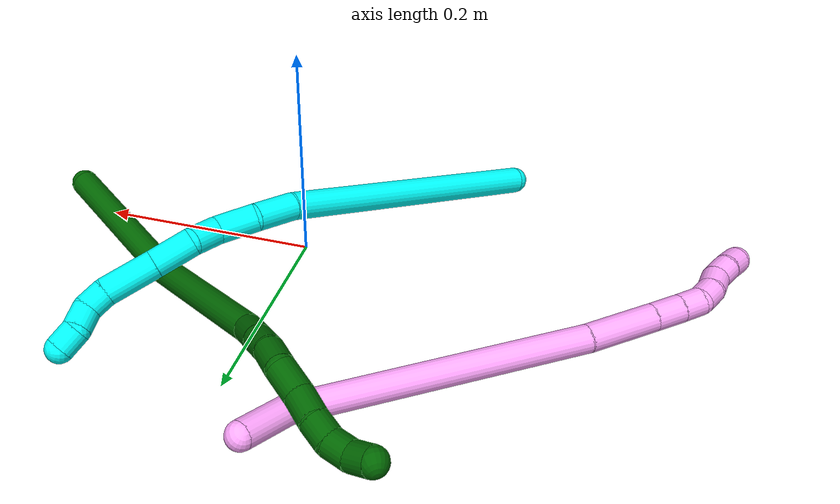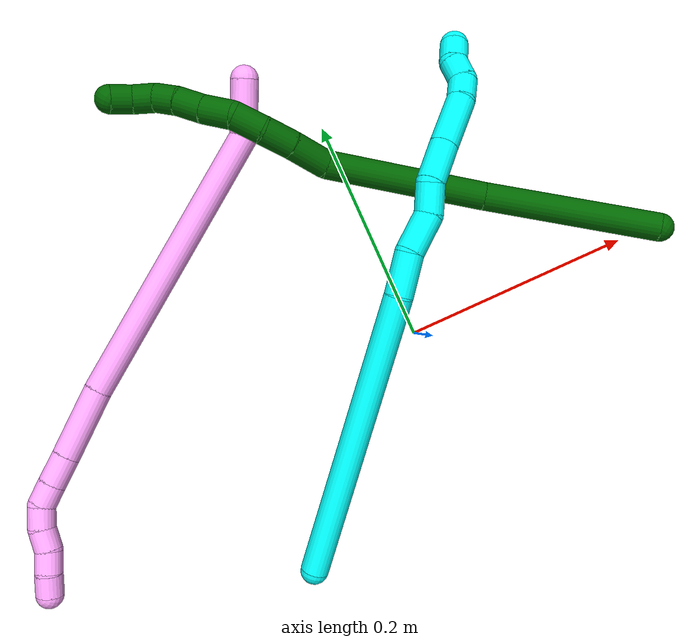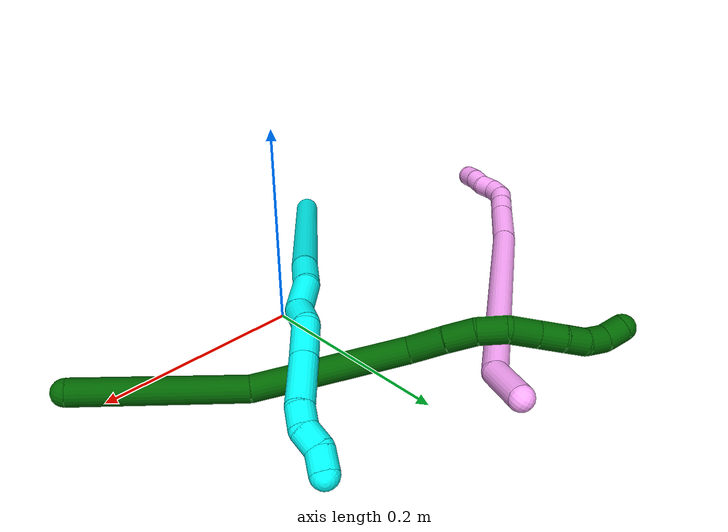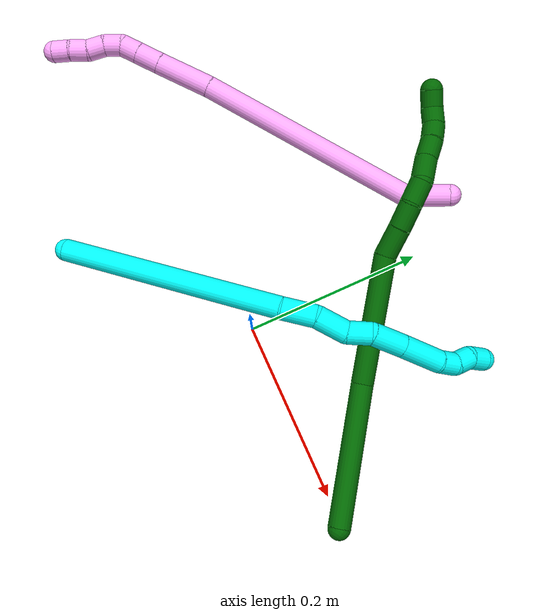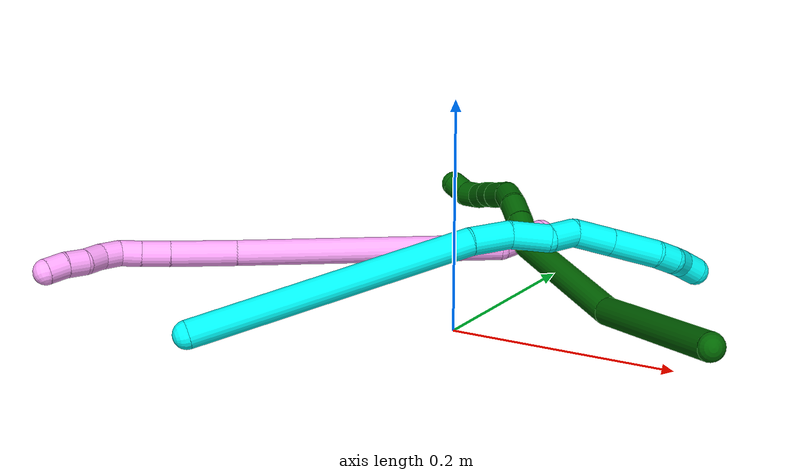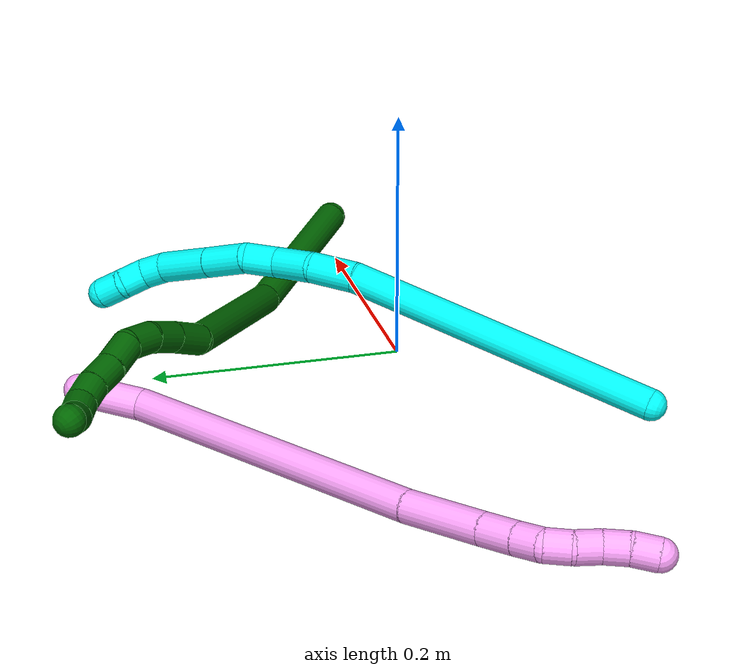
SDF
<sdf version="1.7">
 <world name="default">
  <model name="photoneo_s_sensor">
   <static>1</static>
   <pose>0 0 2 1.57079 1.57079 3.14159</pose>
   <link name="link">
    <inertial><mass>0.1</mass></inertial>
    <sensor name="sensor" type="depth">
     <update_rate>30</update_rate>
     <camera>
      <horizontal_fov>1.22</horizontal_fov>
      <image><width>1920</width><height>1200</height><format>B8G8R8</format></image>
      <clip><near>0.1</near><far>4</far></clip>
      <depth_camera><output>points</output></depth_camera>
     </camera>
     <plugin name="camera_plugin" filename="libgazebo_ros_depth_camera.so">
      <baseline>0.2</baseline>
      <alwaysOn>1</alwaysOn>
      <updateRate>0.0</updateRate>
      <cameraName>camera_ir</cameraName>
      <imageTopicName>/camera/color/image_raw</imageTopicName>
      <cameraInfoTopicName>/camera/color/camera_info</cameraInfoTopicName>
      <depthImageTopicName>/camera/depth/image_raw</depthImageTopicName>
      <depthImageCameraInfoTopicName>/camera/depth/camera_info</depthImageCameraInfoTopicName>
      <pointCloudTopicName>/camera/depth/points</pointCloudTopicName>
      <frameName>fr_optical</frameName>
      <pointCloudCutoff>0.1</pointCloudCutoff>
      <pointCloudCutoffMax>2.0</pointCloudCutoffMax>
      <distortionK1>0</distortionK1>
      <distortionK2>0</distortionK2>
      <distortionK3>0</distortionK3>
      <distortionT1>0</distortionT1>
      <distortionT2>0</distortionT2>
      <CxPrime>0</CxPrime>
      <Cx>0</Cx>
      <Cy>0</Cy>
      <focalLength>0</focalLength>
      <hackBaseline>0</hackBaseline>
     </plugin>
    </sensor>
   </link>
  </model>
  <model name="bin">
   <static>1</static>
   <link name="bottom">
    <collision name="collision-bottom">
     <pose>0 0 -0.01 0 -0 0</pose>
     <geometry><box><size>0.8 0.6 0.02</size></box></geometry>
     <surface>
      <friction><ode><mu>100</mu><mu2>100</mu2></ode></friction>
      <contact><collide_bitmask>65535</collide_bitmask></contact>
     </surface>
    </collision>
   </link>
   <link name="west_wall">
    <collision name="collision-west_wall">
     <pose>-0.41 0 0.1 0 -0 0</pose>
     <geometry><box><size>0.02 0.6 0.2</size></box></geometry>
     <surface>
      <friction><ode><mu>100</mu><mu2>100</mu2></ode></friction>
      <contact><collide_bitmask>65535</collide_bitmask></contact>
     </surface>
    </collision>
   </link>
   <link name="east_wall">
    <collision name="collision-east_wall">
     <pose>0.41 0 0.1 0 -0 0</pose>
     <geometry><box><size>0.02 0.6 0.2</size></box></geometry>
     <surface>
      <friction><ode><mu>100</mu><mu2>100</mu2></ode></friction>
      <contact><collide_bitmask>65535</collide_bitmask></contact>
     </surface>
    </collision>
   </link>
   <link name="south_wall">
    <collision name="collision-south_wall">
     <pose>0 -0.31 0.1 0 -0 0</pose>
     <geometry><box><size>0.8 0.02 0.2</size></box></geometry>
     <surface>
      <friction><ode><mu>100</mu><mu2>100</mu2></ode></friction>
      <contact><collide_bitmask>65535</collide_bitmask></contact>
     </surface>
    </collision>
   </link>
   <link name="north_wall">
    <collision name="collision-north_wall">
     <pose>0 0.31 0.1 0 -0 0</pose>
     <geometry><box><size>0.8 0.02 0.2</size></box></geometry>
     <surface>
      <friction><ode><mu>100</mu><mu2>100</mu2></ode></friction>
      <contact><collide_bitmask>65535</collide_bitmask></contact>
     </surface>
    </collision>
   </link>
  </model>
  <model name="3">
   <static>0</static>
   <link name="3">
    <collision name="collision-cylinder-e_1_1_4">
     <pose>-0.000203 0.000655 0.128577 -0.005098 -0.001576 4e-06</pose>
     <geometry><cylinder><radius>0.0125</radius><length>0.257159</length></cylinder></geometry>
     <surface>
      <friction><ode><mu>1.16</mu><mu2>1.16</mu2><slip1>0</slip1><slip2>0</slip2></ode></friction>
      <contact><ode><kp>1e+06</kp><kd>1</kd><max_vel>0</max_vel><min_depth>0.001</min_depth></ode></contact>
     </surface>
    </collision>
    <visual name="visual-cylinder-e_1_1_4">
     <pose>-0.000203 0.000655 0.128577 -0.005098 -0.001576 4e-06</pose>
     <geometry><cylinder><radius>0.0125</radius><length>0.257159</length></cylinder></geometry>
     <material><ambient>0.003922 1 0.996078 1</ambient></material>
    </visual>
    <collision name="collision-cylinder-e_2_4_5">
     <pose>-0.002354 0.003815 0.275465 -0.135912 -0.105045 0.007156</pose>
     <geometry><cylinder><radius>0.0125</radius><length>0.037166</length></cylinder></geometry>
     <surface>
      <friction><ode><mu>1.16</mu><mu2>1.16</mu2><slip1>0</slip1><slip2>0</slip2></ode></friction>
      <contact><ode><kp>1e+06</kp><kd>1</kd><max_vel>0</max_vel><min_depth>0.001</min_depth></ode></contact>
     </surface>
    </collision>
    <visual name="visual-cylinder-e_2_4_5">
     <pose>-0.002354 0.003815 0.275465 -0.135912 -0.105045 0.007156</pose>
     <geometry><cylinder><radius>0.0125</radius><length>0.037166</length></cylinder></geometry>
     <material><ambient>0.003922 1 0.996078 1</ambient></material>
    </visual>
    <collision name="collision-cylinder-e_3_5_6">
     <pose>-0.003591 0.013414 0.310112 -0.409704 0.039905 -0.008292</pose>
     <geometry><cylinder><radius>0.0125</radius><length>0.035651</length></cylinder></geometry>
     <surface>
      <friction><ode><mu>1.16</mu><mu2>1.16</mu2><slip1>0</slip1><slip2>0</slip2></ode></friction>
      <contact><ode><kp>1e+06</kp><kd>1</kd><max_vel>0</max_vel><min_depth>0.001</min_depth></ode></contact>
     </surface>
    </collision>
    <visual name="visual-cylinder-e_3_5_6">
     <pose>-0.003591 0.013414 0.310112 -0.409704 0.039905 -0.008292</pose>
     <geometry><cylinder><radius>0.0125</radius><length>0.035651</length></cylinder></geometry>
     <material><ambient>0.003922 1 0.996078 1</ambient></material>
    </visual>
    <collision name="collision-cylinder-e_4_6_7">
     <pose>-0.006583 0.021422 0.339153 -0.071724 -0.282992 0.010221</pose>
     <geometry><cylinder><radius>0.0125</radius><length>0.026527</length></cylinder></geometry>
     <surface>
      <friction><ode><mu>1.16</mu><mu2>1.16</mu2><slip1>0</slip1><slip2>0</slip2></ode></friction>
      <contact><ode><kp>1e+06</kp><kd>1</kd><max_vel>0</max_vel><min_depth>0.001</min_depth></ode></contact>
     </surface>
    </collision>
    <visual name="visual-cylinder-e_4_6_7">
     <pose>-0.006583 0.021422 0.339153 -0.071724 -0.282992 0.010221</pose>
     <geometry><cylinder><radius>0.0125</radius><length>0.026527</length></cylinder></geometry>
     <material><ambient>0.003922 1 0.996078 1</ambient></material>
    </visual>
    <collision name="collision-cylinder-e_5_7_8">
     <pose>-0.012816 0.031401 0.367461 -0.526346 -0.13924 0.037571</pose>
     <geometry><cylinder><radius>0.0125</radius><length>0.036448</length></cylinder></geometry>
     <surface>
      <friction><ode><mu>1.16</mu><mu2>1.16</mu2><slip1>0</slip1><slip2>0</slip2></ode></friction>
      <contact><ode><kp>1e+06</kp><kd>1</kd><max_vel>0</max_vel><min_depth>0.001</min_depth></ode></contact>
     </surface>
    </collision>
    <visual name="visual-cylinder-e_5_7_8">
     <pose>-0.012816 0.031401 0.367461 -0.526346 -0.13924 0.037571</pose>
     <geometry><cylinder><radius>0.0125</radius><length>0.036448</length></cylinder></geometry>
     <material><ambient>0.003922 1 0.996078 1</ambient></material>
    </visual>
    <collision name="collision-cylinder-e_6_8_9">
     <pose>-0.018099 0.052151 0.402876 -0.532863 -0.119163 0.032558</pose>
     <geometry><cylinder><radius>0.0125</radius><length>0.046326</length></cylinder></geometry>
     <surface>
      <friction><ode><mu>1.16</mu><mu2>1.16</mu2><slip1>0</slip1><slip2>0</slip2></ode></friction>
      <contact><ode><kp>1e+06</kp><kd>1</kd><max_vel>0</max_vel><min_depth>0.001</min_depth></ode></contact>
     </surface>
    </collision>
    <visual name="visual-cylinder-e_6_8_9">
     <pose>-0.018099 0.052151 0.402876 -0.532863 -0.119163 0.032558</pose>
     <geometry><cylinder><radius>0.0125</radius><length>0.046326</length></cylinder></geometry>
     <material><ambient>0.003922 1 0.996078 1</ambient></material>
    </visual>
    <collision name="collision-cylinder-e_7_9_10">
     <pose>-0.024368 0.068853 0.430592 -0.565568 -0.359056 0.105369</pose>
     <geometry><cylinder><radius>0.0125</radius><length>0.020004</length></cylinder></geometry>
     <surface>
      <friction><ode><mu>1.16</mu><mu2>1.16</mu2><slip1>0</slip1><slip2>0</slip2></ode></friction>
      <contact><ode><kp>1e+06</kp><kd>1</kd><max_vel>0</max_vel><min_depth>0.001</min_depth></ode></contact>
     </surface>
    </collision>
    <visual name="visual-cylinder-e_7_9_10">
     <pose>-0.024368 0.068853 0.430592 -0.565568 -0.359056 0.105369</pose>
     <geometry><cylinder><radius>0.0125</radius><length>0.020004</length></cylinder></geometry>
     <material><ambient>0.003922 1 0.996078 1</ambient></material>
    </visual>
    <collision name="collision-cylinder-e_8_10_11">
     <pose>-0.035477 0.07663 0.44474 -0.41619 -0.838821 0.187737</pose>
     <geometry><cylinder><radius>0.0125</radius><length>0.020421</length></cylinder></geometry>
     <surface>
      <friction><ode><mu>1.16</mu><mu2>1.16</mu2><slip1>0</slip1><slip2>0</slip2></ode></friction>
      <contact><ode><kp>1e+06</kp><kd>1</kd><max_vel>0</max_vel><min_depth>0.001</min_depth></ode></contact>
     </surface>
    </collision>
    <visual name="visual-cylinder-e_8_10_11">
     <pose>-0.035477 0.07663 0.44474 -0.41619 -0.838821 0.187737</pose>
     <geometry><cylinder><radius>0.0125</radius><length>0.020421</length></cylinder></geometry>
     <material><ambient>0.003922 1 0.996078 1</ambient></material>
    </visual>
    <collision name="collision-cylinder-e_9_11_2">
     <pose>-0.047243 0.085187 0.458192 -0.677226 -0.423421 0.1511</pose>
     <geometry><cylinder><radius>0.0125</radius><length>0.020298</length></cylinder></geometry>
     <surface>
      <friction><ode><mu>1.16</mu><mu2>1.16</mu2><slip1>0</slip1><slip2>0</slip2></ode></friction>
      <contact><ode><kp>1e+06</kp><kd>1</kd><max_vel>0</max_vel><min_depth>0.001</min_depth></ode></contact>
     </surface>
    </collision>
    <visual name="visual-cylinder-e_9_11_2">
     <pose>-0.047243 0.085187 0.458192 -0.677226 -0.423421 0.1511</pose>
     <geometry><cylinder><radius>0.0125</radius><length>0.020298</length></cylinder></geometry>
     <material><ambient>0.003922 1 0.996078 1</ambient></material>
    </visual>
    <collision name="collision-sphere-2">
     <pose>-0.051413 0.090985 0.465403 0 -0 0</pose>
     <geometry><sphere><radius>0.0125</radius></sphere></geometry>
     <surface>
      <friction><ode><mu>1.16</mu><mu2>1.16</mu2><slip1>0</slip1><slip2>0</slip2></ode></friction>
      <contact><ode><kp>1e+06</kp><kd>1</kd><max_vel>0</max_vel><min_depth>0.001</min_depth></ode></contact>
     </surface>
    </collision>
    <visual name="visual-sphere-2">
     <pose>-0.051413 0.090985 0.465403 0 -0 0</pose>
     <geometry><sphere><radius>0.0125</radius></sphere></geometry>
     <material><ambient>0.003922 1 0.996078 1</ambient></material>
    </visual>
    <collision name="collision-sphere-11">
     <pose>-0.043073 0.079389 0.450981 0 -0 0</pose>
     <geometry><sphere><radius>0.0125</radius></sphere></geometry>
     <surface>
      <friction><ode><mu>1.16</mu><mu2>1.16</mu2><slip1>0</slip1><slip2>0</slip2></ode></friction>
      <contact><ode><kp>1e+06</kp><kd>1</kd><max_vel>0</max_vel><min_depth>0.001</min_depth></ode></contact>
     </surface>
    </collision>
    <visual name="visual-sphere-11">
     <pose>-0.043073 0.079389 0.450981 0 -0 0</pose>
     <geometry><sphere><radius>0.0125</radius></sphere></geometry>
     <material><ambient>0.003922 1 0.996078 1</ambient></material>
    </visual>
    <collision name="collision-sphere-10">
     <pose>-0.027882 0.073871 0.438498 0 -0 0</pose>
     <geometry><sphere><radius>0.0125</radius></sphere></geometry>
     <surface>
      <friction><ode><mu>1.16</mu><mu2>1.16</mu2><slip1>0</slip1><slip2>0</slip2></ode></friction>
      <contact><ode><kp>1e+06</kp><kd>1</kd><max_vel>0</max_vel><min_depth>0.001</min_depth></ode></contact>
     </surface>
    </collision>
    <visual name="visual-sphere-10">
     <pose>-0.027882 0.073871 0.438498 0 -0 0</pose>
     <geometry><sphere><radius>0.0125</radius></sphere></geometry>
     <material><ambient>0.003922 1 0.996078 1</ambient></material>
    </visual>
    <collision name="collision-sphere-9">
     <pose>-0.020853 0.063835 0.422686 0 -0 0</pose>
     <geometry><sphere><radius>0.0125</radius></sphere></geometry>
     <surface>
      <friction><ode><mu>1.16</mu><mu2>1.16</mu2><slip1>0</slip1><slip2>0</slip2></ode></friction>
      <contact><ode><kp>1e+06</kp><kd>1</kd><max_vel>0</max_vel><min_depth>0.001</min_depth></ode></contact>
     </surface>
    </collision>
    <visual name="visual-sphere-9">
     <pose>-0.020853 0.063835 0.422686 0 -0 0</pose>
     <geometry><sphere><radius>0.0125</radius></sphere></geometry>
     <material><ambient>0.003922 1 0.996078 1</ambient></material>
    </visual>
    <collision name="collision-sphere-4">
     <pose>-0.000405 0.001311 0.257155 0 -0 0</pose>
     <geometry><sphere><radius>0.0125</radius></sphere></geometry>
     <surface>
      <friction><ode><mu>1.16</mu><mu2>1.16</mu2><slip1>0</slip1><slip2>0</slip2></ode></friction>
      <contact><ode><kp>1e+06</kp><kd>1</kd><max_vel>0</max_vel><min_depth>0.001</min_depth></ode></contact>
     </surface>
    </collision>
    <visual name="visual-sphere-4">
     <pose>-0.000405 0.001311 0.257155 0 -0 0</pose>
     <geometry><sphere><radius>0.0125</radius></sphere></geometry>
     <material><ambient>0.003922 1 0.996078 1</ambient></material>
    </visual>
    <collision name="collision-sphere-1">
     <geometry><sphere><radius>0.0125</radius></sphere></geometry>
     <surface>
      <friction><ode><mu>1.16</mu><mu2>1.16</mu2><slip1>0</slip1><slip2>0</slip2></ode></friction>
      <contact><ode><kp>1e+06</kp><kd>1</kd><max_vel>0</max_vel><min_depth>0.001</min_depth></ode></contact>
     </surface>
    </collision>
    <visual name="visual-sphere-1">
     <geometry><sphere><radius>0.0125</radius></sphere></geometry>
     <material><ambient>0.003922 1 0.996078 1</ambient></material>
    </visual>
    <collision name="collision-sphere-8">
     <pose>-0.015346 0.040468 0.383066 0 -0 0</pose>
     <geometry><sphere><radius>0.0125</radius></sphere></geometry>
     <surface>
      <friction><ode><mu>1.16</mu><mu2>1.16</mu2><slip1>0</slip1><slip2>0</slip2></ode></friction>
      <contact><ode><kp>1e+06</kp><kd>1</kd><max_vel>0</max_vel><min_depth>0.001</min_depth></ode></contact>
     </surface>
    </collision>
    <visual name="visual-sphere-8">
     <pose>-0.015346 0.040468 0.383066 0 -0 0</pose>
     <geometry><sphere><radius>0.0125</radius></sphere></geometry>
     <material><ambient>0.003922 1 0.996078 1</ambient></material>
    </visual>
    <collision name="collision-sphere-5">
     <pose>-0.004302 0.006319 0.293775 0 -0 0</pose>
     <geometry><sphere><radius>0.0125</radius></sphere></geometry>
     <surface>
      <friction><ode><mu>1.16</mu><mu2>1.16</mu2><slip1>0</slip1><slip2>0</slip2></ode></friction>
      <contact><ode><kp>1e+06</kp><kd>1</kd><max_vel>0</max_vel><min_depth>0.001</min_depth></ode></contact>
     </surface>
    </collision>
    <visual name="visual-sphere-5">
     <pose>-0.004302 0.006319 0.293775 0 -0 0</pose>
     <geometry><sphere><radius>0.0125</radius></sphere></geometry>
     <material><ambient>0.003922 1 0.996078 1</ambient></material>
    </visual>
    <collision name="collision-sphere-6">
     <pose>-0.00288 0.020509 0.326449 0 -0 0</pose>
     <geometry><sphere><radius>0.0125</radius></sphere></geometry>
     <surface>
      <friction><ode><mu>1.16</mu><mu2>1.16</mu2><slip1>0</slip1><slip2>0</slip2></ode></friction>
      <contact><ode><kp>1e+06</kp><kd>1</kd><max_vel>0</max_vel><min_depth>0.001</min_depth></ode></contact>
     </surface>
    </collision>
    <visual name="visual-sphere-6">
     <pose>-0.00288 0.020509 0.326449 0 -0 0</pose>
     <geometry><sphere><radius>0.0125</radius></sphere></geometry>
     <material><ambient>0.003922 1 0.996078 1</ambient></material>
    </visual>
    <collision name="collision-sphere-7">
     <pose>-0.010287 0.022334 0.351856 0 -0 0</pose>
     <geometry><sphere><radius>0.0125</radius></sphere></geometry>
     <surface>
      <friction><ode><mu>1.16</mu><mu2>1.16</mu2><slip1>0</slip1><slip2>0</slip2></ode></friction>
      <contact><ode><kp>1e+06</kp><kd>1</kd><max_vel>0</max_vel><min_depth>0.001</min_depth></ode></contact>
     </surface>
    </collision>
    <visual name="visual-sphere-7">
     <pose>-0.010287 0.022334 0.351856 0 -0 0</pose>
     <geometry><sphere><radius>0.0125</radius></sphere></geometry>
     <material><ambient>0.003922 1 0.996078 1</ambient></material>
    </visual>
    <inertial>
     <pose>-0.007837 0.019177 0.244817 0 -0 0</pose>
     <mass>0.5</mass>
     <inertia>
      <ixx>0.001457</ixx>
      <ixy>0</ixy>
      <ixz>0</ixz>
      <iyy>0.001466</iyy>
      <iyz>0</iyz>
      <izz>2.4e-05</izz>
     </inertia>
    </inertial>
   </link>
   <pose>-0.166998 -0.154045 0.011495 -1.31811 -0.375974 -0.806908</pose>
  </model>
  <model name="4">
   <static>0</static>
   <link name="4">
    <collision name="collision-cylinder-e_1_1_4">
     <pose>-0.020145 -0.013862 0.004207 1.27617 -0.947354 -0.726522</pose>
     <geometry><cylinder><radius>0.0125</radius><length>0.049626</length></cylinder></geometry>
     <surface>
      <friction><ode><mu>1.16</mu><mu2>1.16</mu2><slip1>0</slip1><slip2>0</slip2></ode></friction>
      <contact><ode><kp>1e+06</kp><kd>1</kd><max_vel>0</max_vel><min_depth>0.001</min_depth></ode></contact>
     </surface>
    </collision>
    <visual name="visual-cylinder-e_1_1_4">
     <pose>-0.020145 -0.013862 0.004207 1.27617 -0.947354 -0.726522</pose>
     <geometry><cylinder><radius>0.0125</radius><length>0.049626</length></cylinder></geometry>
     <material><ambient>1 0.65098 0.996078 1</ambient></material>
    </visual>
    <collision name="collision-cylinder-e_2_4_5">
     <pose>-0.115202 -0.128582 -0.020572 1.85065 -0.619968 -0.8043</pose>
     <geometry><cylinder><radius>0.0125</radius><length>0.25787</length></cylinder></geometry>
     <surface>
      <friction><ode><mu>1.16</mu><mu2>1.16</mu2><slip1>0</slip1><slip2>0</slip2></ode></friction>
      <contact><ode><kp>1e+06</kp><kd>1</kd><max_vel>0</max_vel><min_depth>0.001</min_depth></ode></contact>
     </surface>
    </collision>
    <visual name="visual-cylinder-e_2_4_5">
     <pose>-0.115202 -0.128582 -0.020572 1.85065 -0.619968 -0.8043</pose>
     <geometry><cylinder><radius>0.0125</radius><length>0.25787</length></cylinder></geometry>
     <material><ambient>1 0.65098 0.996078 1</ambient></material>
    </visual>
    <collision name="collision-cylinder-e_3_5_6">
     <pose>-0.21073 -0.252974 -0.056288 1.84935 -0.699944 -0.901557</pose>
     <geometry><cylinder><radius>0.0125</radius><length>0.064004</length></cylinder></geometry>
     <surface>
      <friction><ode><mu>1.16</mu><mu2>1.16</mu2><slip1>0</slip1><slip2>0</slip2></ode></friction>
      <contact><ode><kp>1e+06</kp><kd>1</kd><max_vel>0</max_vel><min_depth>0.001</min_depth></ode></contact>
     </surface>
    </collision>
    <visual name="visual-cylinder-e_3_5_6">
     <pose>-0.21073 -0.252974 -0.056288 1.84935 -0.699944 -0.901557</pose>
     <geometry><cylinder><radius>0.0125</radius><length>0.064004</length></cylinder></geometry>
     <material><ambient>1 0.65098 0.996078 1</ambient></material>
    </visual>
    <collision name="collision-cylinder-e_4_6_7">
     <pose>-0.240174 -0.286532 -0.06621 1.87896 -0.698269 -0.923968</pose>
     <geometry><cylinder><radius>0.0125</radius><length>0.027468</length></cylinder></geometry>
     <surface>
      <friction><ode><mu>1.16</mu><mu2>1.16</mu2><slip1>0</slip1><slip2>0</slip2></ode></friction>
      <contact><ode><kp>1e+06</kp><kd>1</kd><max_vel>0</max_vel><min_depth>0.001</min_depth></ode></contact>
     </surface>
    </collision>
    <visual name="visual-cylinder-e_4_6_7">
     <pose>-0.240174 -0.286532 -0.06621 1.87896 -0.698269 -0.923968</pose>
     <geometry><cylinder><radius>0.0125</radius><length>0.027468</length></cylinder></geometry>
     <material><ambient>1 0.65098 0.996078 1</ambient></material>
    </visual>
    <collision name="collision-cylinder-e_5_7_8">
     <pose>-0.255826 -0.303948 -0.071932 1.90076 -0.717739 -0.966848</pose>
     <geometry><cylinder><radius>0.0125</radius><length>0.020746</length></cylinder></geometry>
     <surface>
      <friction><ode><mu>1.16</mu><mu2>1.16</mu2><slip1>0</slip1><slip2>0</slip2></ode></friction>
      <contact><ode><kp>1e+06</kp><kd>1</kd><max_vel>0</max_vel><min_depth>0.001</min_depth></ode></contact>
     </surface>
    </collision>
    <visual name="visual-cylinder-e_5_7_8">
     <pose>-0.255826 -0.303948 -0.071932 1.90076 -0.717739 -0.966848</pose>
     <geometry><cylinder><radius>0.0125</radius><length>0.020746</length></cylinder></geometry>
     <material><ambient>1 0.65098 0.996078 1</ambient></material>
    </visual>
    <collision name="collision-cylinder-e_6_8_9">
     <pose>-0.271563 -0.316033 -0.07372 1.41363 -1.08121 -0.947389</pose>
     <geometry><cylinder><radius>0.0125</radius><length>0.020204</length></cylinder></geometry>
     <surface>
      <friction><ode><mu>1.16</mu><mu2>1.16</mu2><slip1>0</slip1><slip2>0</slip2></ode></friction>
      <contact><ode><kp>1e+06</kp><kd>1</kd><max_vel>0</max_vel><min_depth>0.001</min_depth></ode></contact>
     </surface>
    </collision>
    <visual name="visual-cylinder-e_6_8_9">
     <pose>-0.271563 -0.316033 -0.07372 1.41363 -1.08121 -0.947389</pose>
     <geometry><cylinder><radius>0.0125</radius><length>0.020204</length></cylinder></geometry>
     <material><ambient>1 0.65098 0.996078 1</ambient></material>
    </visual>
    <collision name="collision-cylinder-e_7_9_10">
     <pose>-0.28991 -0.323189 -0.070585 0.800315 -1.22161 -0.575814</pose>
     <geometry><cylinder><radius>0.0125</radius><length>0.020074</length></cylinder></geometry>
     <surface>
      <friction><ode><mu>1.16</mu><mu2>1.16</mu2><slip1>0</slip1><slip2>0</slip2></ode></friction>
      <contact><ode><kp>1e+06</kp><kd>1</kd><max_vel>0</max_vel><min_depth>0.001</min_depth></ode></contact>
     </surface>
    </collision>
    <visual name="visual-cylinder-e_7_9_10">
     <pose>-0.28991 -0.323189 -0.070585 0.800315 -1.22161 -0.575814</pose>
     <geometry><cylinder><radius>0.0125</radius><length>0.020074</length></cylinder></geometry>
     <material><ambient>1 0.65098 0.996078 1</ambient></material>
    </visual>
    <collision name="collision-cylinder-e_8_10_11">
     <pose>-0.308198 -0.330281 -0.06776 1.47742 -1.0875 -1.00656</pose>
     <geometry><cylinder><radius>0.0125</radius><length>0.020006</length></cylinder></geometry>
     <surface>
      <friction><ode><mu>1.16</mu><mu2>1.16</mu2><slip1>0</slip1><slip2>0</slip2></ode></friction>
      <contact><ode><kp>1e+06</kp><kd>1</kd><max_vel>0</max_vel><min_depth>0.001</min_depth></ode></contact>
     </surface>
    </collision>
    <visual name="visual-cylinder-e_8_10_11">
     <pose>-0.308198 -0.330281 -0.06776 1.47742 -1.0875 -1.00656</pose>
     <geometry><cylinder><radius>0.0125</radius><length>0.020006</length></cylinder></geometry>
     <material><ambient>1 0.65098 0.996078 1</ambient></material>
    </visual>
    <collision name="collision-cylinder-e_9_11_2">
     <pose>-0.325321 -0.340192 -0.065375 1.21701 -0.972669 -0.70583</pose>
     <geometry><cylinder><radius>0.0125</radius><length>0.020002</length></cylinder></geometry>
     <surface>
      <friction><ode><mu>1.16</mu><mu2>1.16</mu2><slip1>0</slip1><slip2>0</slip2></ode></friction>
      <contact><ode><kp>1e+06</kp><kd>1</kd><max_vel>0</max_vel><min_depth>0.001</min_depth></ode></contact>
     </surface>
    </collision>
    <visual name="visual-cylinder-e_9_11_2">
     <pose>-0.325321 -0.340192 -0.065375 1.21701 -0.972669 -0.70583</pose>
     <geometry><cylinder><radius>0.0125</radius><length>0.020002</length></cylinder></geometry>
     <material><ambient>1 0.65098 0.996078 1</ambient></material>
    </visual>
    <collision name="collision-sphere-2">
     <pose>-0.333585 -0.345475 -0.063424 0 -0 0</pose>
     <geometry><sphere><radius>0.0125</radius></sphere></geometry>
     <surface>
      <friction><ode><mu>1.16</mu><mu2>1.16</mu2><slip1>0</slip1><slip2>0</slip2></ode></friction>
      <contact><ode><kp>1e+06</kp><kd>1</kd><max_vel>0</max_vel><min_depth>0.001</min_depth></ode></contact>
     </surface>
    </collision>
    <visual name="visual-sphere-2">
     <pose>-0.333585 -0.345475 -0.063424 0 -0 0</pose>
     <geometry><sphere><radius>0.0125</radius></sphere></geometry>
     <material><ambient>1 0.65098 0.996078 1</ambient></material>
    </visual>
    <collision name="collision-sphere-11">
     <pose>-0.317056 -0.334909 -0.067327 0 -0 0</pose>
     <geometry><sphere><radius>0.0125</radius></sphere></geometry>
     <surface>
      <friction><ode><mu>1.16</mu><mu2>1.16</mu2><slip1>0</slip1><slip2>0</slip2></ode></friction>
      <contact><ode><kp>1e+06</kp><kd>1</kd><max_vel>0</max_vel><min_depth>0.001</min_depth></ode></contact>
     </surface>
    </collision>
    <visual name="visual-sphere-11">
     <pose>-0.317056 -0.334909 -0.067327 0 -0 0</pose>
     <geometry><sphere><radius>0.0125</radius></sphere></geometry>
     <material><ambient>1 0.65098 0.996078 1</ambient></material>
    </visual>
    <collision name="collision-sphere-10">
     <pose>-0.299341 -0.325653 -0.068193 0 -0 0</pose>
     <geometry><sphere><radius>0.0125</radius></sphere></geometry>
     <surface>
      <friction><ode><mu>1.16</mu><mu2>1.16</mu2><slip1>0</slip1><slip2>0</slip2></ode></friction>
      <contact><ode><kp>1e+06</kp><kd>1</kd><max_vel>0</max_vel><min_depth>0.001</min_depth></ode></contact>
     </surface>
    </collision>
    <visual name="visual-sphere-10">
     <pose>-0.299341 -0.325653 -0.068193 0 -0 0</pose>
     <geometry><sphere><radius>0.0125</radius></sphere></geometry>
     <material><ambient>1 0.65098 0.996078 1</ambient></material>
    </visual>
    <collision name="collision-sphere-9">
     <pose>-0.280479 -0.320725 -0.072977 0 -0 0</pose>
     <geometry><sphere><radius>0.0125</radius></sphere></geometry>
     <surface>
      <friction><ode><mu>1.16</mu><mu2>1.16</mu2><slip1>0</slip1><slip2>0</slip2></ode></friction>
      <contact><ode><kp>1e+06</kp><kd>1</kd><max_vel>0</max_vel><min_depth>0.001</min_depth></ode></contact>
     </surface>
    </collision>
    <visual name="visual-sphere-9">
     <pose>-0.280479 -0.320725 -0.072977 0 -0 0</pose>
     <geometry><sphere><radius>0.0125</radius></sphere></geometry>
     <material><ambient>1 0.65098 0.996078 1</ambient></material>
    </visual>
    <collision name="collision-sphere-4">
     <pose>-0.04029 -0.027725 0.008413 0 -0 0</pose>
     <geometry><sphere><radius>0.0125</radius></sphere></geometry>
     <surface>
      <friction><ode><mu>1.16</mu><mu2>1.16</mu2><slip1>0</slip1><slip2>0</slip2></ode></friction>
      <contact><ode><kp>1e+06</kp><kd>1</kd><max_vel>0</max_vel><min_depth>0.001</min_depth></ode></contact>
     </surface>
    </collision>
    <visual name="visual-sphere-4">
     <pose>-0.04029 -0.027725 0.008413 0 -0 0</pose>
     <geometry><sphere><radius>0.0125</radius></sphere></geometry>
     <material><ambient>1 0.65098 0.996078 1</ambient></material>
    </visual>
    <collision name="collision-sphere-1">
     <geometry><sphere><radius>0.0125</radius></sphere></geometry>
     <surface>
      <friction><ode><mu>1.16</mu><mu2>1.16</mu2><slip1>0</slip1><slip2>0</slip2></ode></friction>
      <contact><ode><kp>1e+06</kp><kd>1</kd><max_vel>0</max_vel><min_depth>0.001</min_depth></ode></contact>
     </surface>
    </collision>
    <visual name="visual-sphere-1">
     <geometry><sphere><radius>0.0125</radius></sphere></geometry>
     <material><ambient>1 0.65098 0.996078 1</ambient></material>
    </visual>
    <collision name="collision-sphere-8">
     <pose>-0.262648 -0.311341 -0.074464 0 -0 0</pose>
     <geometry><sphere><radius>0.0125</radius></sphere></geometry>
     <surface>
      <friction><ode><mu>1.16</mu><mu2>1.16</mu2><slip1>0</slip1><slip2>0</slip2></ode></friction>
      <contact><ode><kp>1e+06</kp><kd>1</kd><max_vel>0</max_vel><min_depth>0.001</min_depth></ode></contact>
     </surface>
    </collision>
    <visual name="visual-sphere-8">
     <pose>-0.262648 -0.311341 -0.074464 0 -0 0</pose>
     <geometry><sphere><radius>0.0125</radius></sphere></geometry>
     <material><ambient>1 0.65098 0.996078 1</ambient></material>
    </visual>
    <collision name="collision-sphere-5">
     <pose>-0.190115 -0.229439 -0.049558 0 -0 0</pose>
     <geometry><sphere><radius>0.0125</radius></sphere></geometry>
     <surface>
      <friction><ode><mu>1.16</mu><mu2>1.16</mu2><slip1>0</slip1><slip2>0</slip2></ode></friction>
      <contact><ode><kp>1e+06</kp><kd>1</kd><max_vel>0</max_vel><min_depth>0.001</min_depth></ode></contact>
     </surface>
    </collision>
    <visual name="visual-sphere-5">
     <pose>-0.190115 -0.229439 -0.049558 0 -0 0</pose>
     <geometry><sphere><radius>0.0125</radius></sphere></geometry>
     <material><ambient>1 0.65098 0.996078 1</ambient></material>
    </visual>
    <collision name="collision-sphere-6">
     <pose>-0.231345 -0.276508 -0.063019 0 -0 0</pose>
     <geometry><sphere><radius>0.0125</radius></sphere></geometry>
     <surface>
      <friction><ode><mu>1.16</mu><mu2>1.16</mu2><slip1>0</slip1><slip2>0</slip2></ode></friction>
      <contact><ode><kp>1e+06</kp><kd>1</kd><max_vel>0</max_vel><min_depth>0.001</min_depth></ode></contact>
     </surface>
    </collision>
    <visual name="visual-sphere-6">
     <pose>-0.231345 -0.276508 -0.063019 0 -0 0</pose>
     <geometry><sphere><radius>0.0125</radius></sphere></geometry>
     <material><ambient>1 0.65098 0.996078 1</ambient></material>
    </visual>
    <collision name="collision-sphere-7">
     <pose>-0.249004 -0.296556 -0.0694 0 -0 0</pose>
     <geometry><sphere><radius>0.0125</radius></sphere></geometry>
     <surface>
      <friction><ode><mu>1.16</mu><mu2>1.16</mu2><slip1>0</slip1><slip2>0</slip2></ode></friction>
      <contact><ode><kp>1e+06</kp><kd>1</kd><max_vel>0</max_vel><min_depth>0.001</min_depth></ode></contact>
     </surface>
    </collision>
    <visual name="visual-sphere-7">
     <pose>-0.249004 -0.296556 -0.0694 0 -0 0</pose>
     <geometry><sphere><radius>0.0125</radius></sphere></geometry>
     <material><ambient>1 0.65098 0.996078 1</ambient></material>
    </visual>
    <inertial>
     <pose>-0.160156 -0.180996 -0.035159 0 -0 0</pose>
     <mass>0.5</mass>
     <inertia>
      <ixx>-6.1e-05</ixx>
      <ixy>0</ixy>
      <ixz>0</ixz>
      <iyy>-0.000569</iyy>
      <iyz>0</iyz>
      <izz>0.002021</izz>
     </inertia>
    </inertial>
   </link>
   <pose>-0.044949 0.264227 0.019286 2.63626 0.303533 1.54035</pose>
  </model>
  <model name="6">
   <static>0</static>
   <link name="6">
    <collision name="collision-cylinder-e_1_1_4">
     <pose>-0.02308 0.018151 -0.071248 -2.89214 -0.304167 1.77032</pose>
     <geometry><cylinder><radius>0.0125</radius><length>0.154121</length></cylinder></geometry>
     <surface>
      <friction><ode><mu>1.16</mu><mu2>1.16</mu2><slip1>0</slip1><slip2>0</slip2></ode></friction>
      <contact><ode><kp>1e+06</kp><kd>1</kd><max_vel>0</max_vel><min_depth>0.001</min_depth></ode></contact>
     </surface>
    </collision>
    <visual name="visual-cylinder-e_1_1_4">
     <pose>-0.02308 0.018151 -0.071248 -2.89214 -0.304167 1.77032</pose>
     <geometry><cylinder><radius>0.0125</radius><length>0.154121</length></cylinder></geometry>
     <material><ambient>0 0.392157 0.003922 1</ambient></material>
    </visual>
    <collision name="collision-cylinder-e_2_4_5">
     <pose>-0.062305 0.07086 -0.203375 -2.6253 -0.226679 0.814061</pose>
     <geometry><cylinder><radius>0.0125</radius><length>0.143684</length></cylinder></geometry>
     <surface>
      <friction><ode><mu>1.16</mu><mu2>1.16</mu2><slip1>0</slip1><slip2>0</slip2></ode></friction>
      <contact><ode><kp>1e+06</kp><kd>1</kd><max_vel>0</max_vel><min_depth>0.001</min_depth></ode></contact>
     </surface>
    </collision>
    <visual name="visual-cylinder-e_2_4_5">
     <pose>-0.062305 0.07086 -0.203375 -2.6253 -0.226679 0.814061</pose>
     <geometry><cylinder><radius>0.0125</radius><length>0.143684</length></cylinder></geometry>
     <material><ambient>0 0.392157 0.003922 1</ambient></material>
    </visual>
    <collision name="collision-cylinder-e_3_5_6">
     <pose>-0.076344 0.115808 -0.277819 -2.48794 0.122676 -0.358458</pose>
     <geometry><cylinder><radius>0.0125</radius><length>0.034433</length></cylinder></geometry>
     <surface>
      <friction><ode><mu>1.16</mu><mu2>1.16</mu2><slip1>0</slip1><slip2>0</slip2></ode></friction>
      <contact><ode><kp>1e+06</kp><kd>1</kd><max_vel>0</max_vel><min_depth>0.001</min_depth></ode></contact>
     </surface>
    </collision>
    <visual name="visual-cylinder-e_3_5_6">
     <pose>-0.076344 0.115808 -0.277819 -2.48794 0.122676 -0.358458</pose>
     <geometry><cylinder><radius>0.0125</radius><length>0.034433</length></cylinder></geometry>
     <material><ambient>0 0.392157 0.003922 1</ambient></material>
    </visual>
    <collision name="collision-cylinder-e_4_6_7">
     <pose>-0.073263 0.134299 -0.303014 -2.53321 0.068626 -0.217818</pose>
     <geometry><cylinder><radius>0.0125</radius><length>0.028413</length></cylinder></geometry>
     <surface>
      <friction><ode><mu>1.16</mu><mu2>1.16</mu2><slip1>0</slip1><slip2>0</slip2></ode></friction>
      <contact><ode><kp>1e+06</kp><kd>1</kd><max_vel>0</max_vel><min_depth>0.001</min_depth></ode></contact>
     </surface>
    </collision>
    <visual name="visual-cylinder-e_4_6_7">
     <pose>-0.073263 0.134299 -0.303014 -2.53321 0.068626 -0.217818</pose>
     <geometry><cylinder><radius>0.0125</radius><length>0.028413</length></cylinder></geometry>
     <material><ambient>0 0.392157 0.003922 1</ambient></material>
    </visual>
    <collision name="collision-cylinder-e_5_7_8">
     <pose>-0.072112 0.147497 -0.326968 -2.74943 0.013254 -0.066701</pose>
     <geometry><cylinder><radius>0.0125</radius><length>0.026675</length></cylinder></geometry>
     <surface>
      <friction><ode><mu>1.16</mu><mu2>1.16</mu2><slip1>0</slip1><slip2>0</slip2></ode></friction>
      <contact><ode><kp>1e+06</kp><kd>1</kd><max_vel>0</max_vel><min_depth>0.001</min_depth></ode></contact>
     </surface>
    </collision>
    <visual name="visual-cylinder-e_5_7_8">
     <pose>-0.072112 0.147497 -0.326968 -2.74943 0.013254 -0.066701</pose>
     <geometry><cylinder><radius>0.0125</radius><length>0.026675</length></cylinder></geometry>
     <material><ambient>0 0.392157 0.003922 1</ambient></material>
    </visual>
    <collision name="collision-cylinder-e_6_8_9">
     <pose>-0.075916 0.153677 -0.35245 -3.05943 -0.292825 2.59795</pose>
     <geometry><cylinder><radius>0.0125</radius><length>0.027578</length></cylinder></geometry>
     <surface>
      <friction><ode><mu>1.16</mu><mu2>1.16</mu2><slip1>0</slip1><slip2>0</slip2></ode></friction>
      <contact><ode><kp>1e+06</kp><kd>1</kd><max_vel>0</max_vel><min_depth>0.001</min_depth></ode></contact>
     </surface>
    </collision>
    <visual name="visual-cylinder-e_6_8_9">
     <pose>-0.075916 0.153677 -0.35245 -3.05943 -0.292825 2.59795</pose>
     <geometry><cylinder><radius>0.0125</radius><length>0.027578</length></cylinder></geometry>
     <material><ambient>0 0.392157 0.003922 1</ambient></material>
    </visual>
    <collision name="collision-cylinder-e_7_9_10">
     <pose>-0.082161 0.156042 -0.377394 -3.03332 -0.188707 2.10153</pose>
     <geometry><cylinder><radius>0.0125</radius><length>0.024141</length></cylinder></geometry>
     <surface>
      <friction><ode><mu>1.16</mu><mu2>1.16</mu2><slip1>0</slip1><slip2>0</slip2></ode></friction>
      <contact><ode><kp>1e+06</kp><kd>1</kd><max_vel>0</max_vel><min_depth>0.001</min_depth></ode></contact>
     </surface>
    </collision>
    <visual name="visual-cylinder-e_7_9_10">
     <pose>-0.082161 0.156042 -0.377394 -3.03332 -0.188707 2.10153</pose>
     <geometry><cylinder><radius>0.0125</radius><length>0.024141</length></cylinder></geometry>
     <material><ambient>0 0.392157 0.003922 1</ambient></material>
    </visual>
    <collision name="collision-cylinder-e_8_10_11">
     <pose>-0.087895 0.157903 -0.398882 -3.08187 -0.342977 2.79999</pose>
     <geometry><cylinder><radius>0.0125</radius><length>0.020639</length></cylinder></geometry>
     <surface>
      <friction><ode><mu>1.16</mu><mu2>1.16</mu2><slip1>0</slip1><slip2>0</slip2></ode></friction>
      <contact><ode><kp>1e+06</kp><kd>1</kd><max_vel>0</max_vel><min_depth>0.001</min_depth></ode></contact>
     </surface>
    </collision>
    <visual name="visual-cylinder-e_8_10_11">
     <pose>-0.087895 0.157903 -0.398882 -3.08187 -0.342977 2.79999</pose>
     <geometry><cylinder><radius>0.0125</radius><length>0.020639</length></cylinder></geometry>
     <material><ambient>0 0.392157 0.003922 1</ambient></material>
    </visual>
    <collision name="collision-cylinder-e_9_11_12">
     <pose>-0.096408 0.161449 -0.416741 -2.79287 -0.526256 1.98334</pose>
     <geometry><cylinder><radius>0.0125</radius><length>0.020076</length></cylinder></geometry>
     <surface>
      <friction><ode><mu>1.16</mu><mu2>1.16</mu2><slip1>0</slip1><slip2>0</slip2></ode></friction>
      <contact><ode><kp>1e+06</kp><kd>1</kd><max_vel>0</max_vel><min_depth>0.001</min_depth></ode></contact>
     </surface>
    </collision>
    <visual name="visual-cylinder-e_9_11_12">
     <pose>-0.096408 0.161449 -0.416741 -2.79287 -0.526256 1.98334</pose>
     <geometry><cylinder><radius>0.0125</radius><length>0.020076</length></cylinder></geometry>
     <material><ambient>0 0.392157 0.003922 1</ambient></material>
    </visual>
    <collision name="collision-cylinder-e_10_12_2">
     <pose>-0.105056 0.171018 -0.431666 -2.36851 -0.364379 0.85009</pose>
     <geometry><cylinder><radius>0.0125</radius><length>0.020239</length></cylinder></geometry>
     <surface>
      <friction><ode><mu>1.16</mu><mu2>1.16</mu2><slip1>0</slip1><slip2>0</slip2></ode></friction>
      <contact><ode><kp>1e+06</kp><kd>1</kd><max_vel>0</max_vel><min_depth>0.001</min_depth></ode></contact>
     </surface>
    </collision>
    <visual name="visual-cylinder-e_10_12_2">
     <pose>-0.105056 0.171018 -0.431666 -2.36851 -0.364379 0.85009</pose>
     <geometry><cylinder><radius>0.0125</radius><length>0.020239</length></cylinder></geometry>
     <material><ambient>0 0.392157 0.003922 1</ambient></material>
    </visual>
    <collision name="collision-sphere-2">
     <pose>-0.108662 0.177621 -0.438433 0 -0 0</pose>
     <geometry><sphere><radius>0.0125</radius></sphere></geometry>
     <surface>
      <friction><ode><mu>1.16</mu><mu2>1.16</mu2><slip1>0</slip1><slip2>0</slip2></ode></friction>
      <contact><ode><kp>1e+06</kp><kd>1</kd><max_vel>0</max_vel><min_depth>0.001</min_depth></ode></contact>
     </surface>
    </collision>
    <visual name="visual-sphere-2">
     <pose>-0.108662 0.177621 -0.438433 0 -0 0</pose>
     <geometry><sphere><radius>0.0125</radius></sphere></geometry>
     <material><ambient>0 0.392157 0.003922 1</ambient></material>
    </visual>
    <collision name="collision-sphere-12">
     <pose>-0.10145 0.164415 -0.424898 0 -0 0</pose>
     <geometry><sphere><radius>0.0125</radius></sphere></geometry>
     <surface>
      <friction><ode><mu>1.16</mu><mu2>1.16</mu2><slip1>0</slip1><slip2>0</slip2></ode></friction>
      <contact><ode><kp>1e+06</kp><kd>1</kd><max_vel>0</max_vel><min_depth>0.001</min_depth></ode></contact>
     </surface>
    </collision>
    <visual name="visual-sphere-12">
     <pose>-0.10145 0.164415 -0.424898 0 -0 0</pose>
     <geometry><sphere><radius>0.0125</radius></sphere></geometry>
     <material><ambient>0 0.392157 0.003922 1</ambient></material>
    </visual>
    <collision name="collision-sphere-11">
     <pose>-0.091366 0.158483 -0.408583 0 -0 0</pose>
     <geometry><sphere><radius>0.0125</radius></sphere></geometry>
     <surface>
      <friction><ode><mu>1.16</mu><mu2>1.16</mu2><slip1>0</slip1><slip2>0</slip2></ode></friction>
      <contact><ode><kp>1e+06</kp><kd>1</kd><max_vel>0</max_vel><min_depth>0.001</min_depth></ode></contact>
     </surface>
    </collision>
    <visual name="visual-sphere-11">
     <pose>-0.091366 0.158483 -0.408583 0 -0 0</pose>
     <geometry><sphere><radius>0.0125</radius></sphere></geometry>
     <material><ambient>0 0.392157 0.003922 1</ambient></material>
    </visual>
    <collision name="collision-sphere-10">
     <pose>-0.084425 0.157323 -0.389181 0 -0 0</pose>
     <geometry><sphere><radius>0.0125</radius></sphere></geometry>
     <surface>
      <friction><ode><mu>1.16</mu><mu2>1.16</mu2><slip1>0</slip1><slip2>0</slip2></ode></friction>
      <contact><ode><kp>1e+06</kp><kd>1</kd><max_vel>0</max_vel><min_depth>0.001</min_depth></ode></contact>
     </surface>
    </collision>
    <visual name="visual-sphere-10">
     <pose>-0.084425 0.157323 -0.389181 0 -0 0</pose>
     <geometry><sphere><radius>0.0125</radius></sphere></geometry>
     <material><ambient>0 0.392157 0.003922 1</ambient></material>
    </visual>
    <collision name="collision-sphere-9">
     <pose>-0.079896 0.154761 -0.365608 0 -0 0</pose>
     <geometry><sphere><radius>0.0125</radius></sphere></geometry>
     <surface>
      <friction><ode><mu>1.16</mu><mu2>1.16</mu2><slip1>0</slip1><slip2>0</slip2></ode></friction>
      <contact><ode><kp>1e+06</kp><kd>1</kd><max_vel>0</max_vel><min_depth>0.001</min_depth></ode></contact>
     </surface>
    </collision>
    <visual name="visual-sphere-9">
     <pose>-0.079896 0.154761 -0.365608 0 -0 0</pose>
     <geometry><sphere><radius>0.0125</radius></sphere></geometry>
     <material><ambient>0 0.392157 0.003922 1</ambient></material>
    </visual>
    <collision name="collision-sphere-4">
     <pose>-0.046159 0.036302 -0.142495 0 -0 0</pose>
     <geometry><sphere><radius>0.0125</radius></sphere></geometry>
     <surface>
      <friction><ode><mu>1.16</mu><mu2>1.16</mu2><slip1>0</slip1><slip2>0</slip2></ode></friction>
      <contact><ode><kp>1e+06</kp><kd>1</kd><max_vel>0</max_vel><min_depth>0.001</min_depth></ode></contact>
     </surface>
    </collision>
    <visual name="visual-sphere-4">
     <pose>-0.046159 0.036302 -0.142495 0 -0 0</pose>
     <geometry><sphere><radius>0.0125</radius></sphere></geometry>
     <material><ambient>0 0.392157 0.003922 1</ambient></material>
    </visual>
    <collision name="collision-sphere-1">
     <geometry><sphere><radius>0.0125</radius></sphere></geometry>
     <surface>
      <friction><ode><mu>1.16</mu><mu2>1.16</mu2><slip1>0</slip1><slip2>0</slip2></ode></friction>
      <contact><ode><kp>1e+06</kp><kd>1</kd><max_vel>0</max_vel><min_depth>0.001</min_depth></ode></contact>
     </surface>
    </collision>
    <visual name="visual-sphere-1">
     <geometry><sphere><radius>0.0125</radius></sphere></geometry>
     <material><ambient>0 0.392157 0.003922 1</ambient></material>
    </visual>
    <collision name="collision-sphere-8">
     <pose>-0.071936 0.152594 -0.339292 0 -0 0</pose>
     <geometry><sphere><radius>0.0125</radius></sphere></geometry>
     <surface>
      <friction><ode><mu>1.16</mu><mu2>1.16</mu2><slip1>0</slip1><slip2>0</slip2></ode></friction>
      <contact><ode><kp>1e+06</kp><kd>1</kd><max_vel>0</max_vel><min_depth>0.001</min_depth></ode></contact>
     </surface>
    </collision>
    <visual name="visual-sphere-8">
     <pose>-0.071936 0.152594 -0.339292 0 -0 0</pose>
     <geometry><sphere><radius>0.0125</radius></sphere></geometry>
     <material><ambient>0 0.392157 0.003922 1</ambient></material>
    </visual>
    <collision name="collision-sphere-5">
     <pose>-0.078451 0.105418 -0.264254 0 -0 0</pose>
     <geometry><sphere><radius>0.0125</radius></sphere></geometry>
     <surface>
      <friction><ode><mu>1.16</mu><mu2>1.16</mu2><slip1>0</slip1><slip2>0</slip2></ode></friction>
      <contact><ode><kp>1e+06</kp><kd>1</kd><max_vel>0</max_vel><min_depth>0.001</min_depth></ode></contact>
     </surface>
    </collision>
    <visual name="visual-sphere-5">
     <pose>-0.078451 0.105418 -0.264254 0 -0 0</pose>
     <geometry><sphere><radius>0.0125</radius></sphere></geometry>
     <material><ambient>0 0.392157 0.003922 1</ambient></material>
    </visual>
    <collision name="collision-sphere-6">
     <pose>-0.074237 0.126199 -0.291384 0 -0 0</pose>
     <geometry><sphere><radius>0.0125</radius></sphere></geometry>
     <surface>
      <friction><ode><mu>1.16</mu><mu2>1.16</mu2><slip1>0</slip1><slip2>0</slip2></ode></friction>
      <contact><ode><kp>1e+06</kp><kd>1</kd><max_vel>0</max_vel><min_depth>0.001</min_depth></ode></contact>
     </surface>
    </collision>
    <visual name="visual-sphere-6">
     <pose>-0.074237 0.126199 -0.291384 0 -0 0</pose>
     <geometry><sphere><radius>0.0125</radius></sphere></geometry>
     <material><ambient>0 0.392157 0.003922 1</ambient></material>
    </visual>
    <collision name="collision-sphere-7">
     <pose>-0.072289 0.1424 -0.314644 0 -0 0</pose>
     <geometry><sphere><radius>0.0125</radius></sphere></geometry>
     <surface>
      <friction><ode><mu>1.16</mu><mu2>1.16</mu2><slip1>0</slip1><slip2>0</slip2></ode></friction>
      <contact><ode><kp>1e+06</kp><kd>1</kd><max_vel>0</max_vel><min_depth>0.001</min_depth></ode></contact>
     </surface>
    </collision>
    <visual name="visual-sphere-7">
     <pose>-0.072289 0.1424 -0.314644 0 -0 0</pose>
     <geometry><sphere><radius>0.0125</radius></sphere></geometry>
     <material><ambient>0 0.392157 0.003922 1</ambient></material>
    </visual>
    <inertial>
     <pose>-0.058192 0.085367 -0.222533 0 -0 0</pose>
     <mass>0.5</mass>
     <inertia>
      <ixx>0.000581</ixx>
      <ixy>0</ixy>
      <ixz>0</ixz>
      <iyy>0.000436</iyy>
      <iyz>0</iyz>
      <izz>-8.4e-05</izz>
     </inertia>
    </inertial>
   </link>
   <pose>0.230494 -0.003398 0.02723 1.31353 -0.322974 0.670055</pose>
  </model>
 </world>
</sdf>
